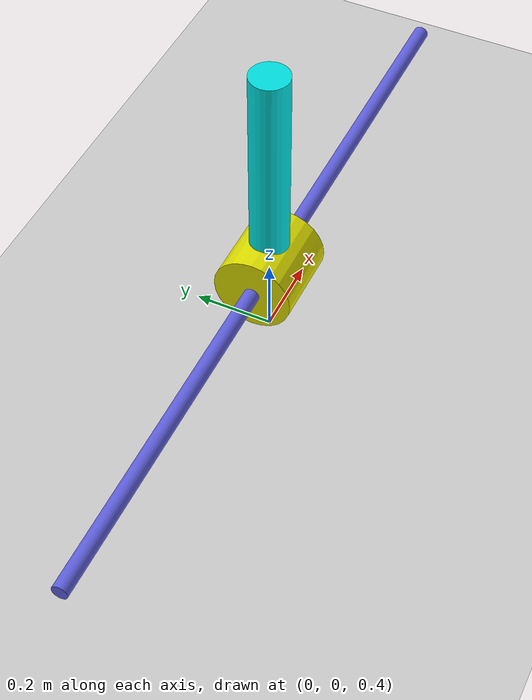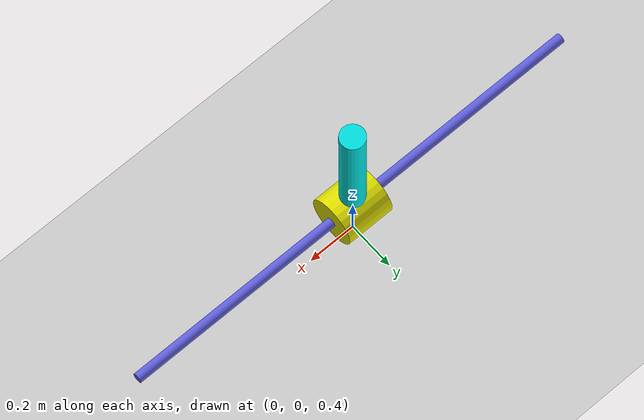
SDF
<?xml version="1.0" ?>
<sdf version="1.8">
  <world name="inverted_pendulum">
    <physics name="10ms" type="ignored">
      <!-- 10 ms physics step; run as fast as CPU allows. Agent loop throttles
           via frame_skip in the sync-gate plugin. -->
      <max_step_size>0.01</max_step_size>
      <real_time_update_rate>0</real_time_update_rate>
    </physics>
    <plugin
      filename="gz-sim-physics-system"
      name="gz::sim::systems::Physics">
    </plugin>
    <plugin
      filename="gz-sim-contact-system"
      name="gz::sim::systems::Contact">
    </plugin>
    <plugin
      filename="gz-sim-sensors-system"
      name="gz::sim::systems::Sensors">
      <render_engine>ogre2</render_engine>
    </plugin>
    <plugin
      filename="gz-sim-scene-broadcaster-system"
      name="gz::sim::systems::SceneBroadcaster">
    </plugin>
    <plugin
      filename="gz-sim-user-commands-system"
      name="gz::sim::systems::UserCommands">
    </plugin>
    <plugin
      filename="gz-sim-python-system-loader-system"
      name="gz::sim::systems::PythonSystemLoader">
      <module_name>inverted_pendulum_learner</module_name>
      <agent_name>inverted_pendulum</agent_name>
      <frame_skip>4</frame_skip>
    </plugin>

    <light name="sun" type="directional">
      <cast_shadows>true</cast_shadows>
      <pose>0 0 10 0 0 0</pose>
      <diffuse>0.8 0.8 0.8 1</diffuse>
      <specular>0.2 0.2 0.2 1</specular>
      <attenuation>
        <range>1000</range>
        <constant>0.9</constant>
        <linear>0.01</linear>
        <quadratic>0.001</quadratic>
      </attenuation>
      <direction>-0.5 0.1 -0.9</direction>
    </light>

    <model name="ground_plane">
      <static>true</static>
      <link name="link">
        <collision name="collision">
          <geometry>
            <plane>
              <normal>0 0 1</normal>
              <size>100 100</size>
            </plane>
          </geometry>
        </collision>
        <visual name="visual">
          <geometry>
            <plane>
              <normal>0 0 1</normal>
              <size>100 100</size>
            </plane>
          </geometry>
          <material>
            <ambient>0.8 0.8 0.8 1</ambient>
            <diffuse>0.8 0.8 0.8 1</diffuse>
            <specular>0.8 0.8 0.8 1</specular>
          </material>
        </visual>
      </link>
    </model>

    <model name="inverted_pendulum">
      <pose>0 0 0.6 0 0 0</pose>
      <include merge="true">
        <uri>package://gazebo_gymnasium_resources/models/inverted_pendulum</uri>
      </include>
    </model>
  </world>
</sdf>

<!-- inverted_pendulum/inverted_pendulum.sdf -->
<sdf version='1.11'>
  <model name='inverted_pendulum'>
    <joint name='world_to_rail' type='fixed'>
      <pose relative_to='__model__'>0 0 0 0 0 0</pose>
      <parent>world</parent>
      <child>rail</child>
    </joint>
    <link name='rail'>
      <pose relative_to='world_to_rail'>0 0 0 0 0 0</pose>
      <inertial>
        <pose>0 0 0 0 0 0</pose>
        <mass>0.0001</mass>
        <inertia>
          <ixx>9.9999999999999995e-07</ixx>
          <ixy>0</ixy>
          <ixz>0</ixz>
          <iyy>9.9999999999999995e-07</iyy>
          <iyz>0</iyz>
          <izz>9.9999999999999995e-07</izz>
        </inertia>
      </inertial>
      <collision name='rail_collision'>
        <pose>0 0 0 0 1.5707963267948966 0</pose>
        <geometry>
          <cylinder>
            <length>2</length>
            <radius>0.02</radius>
          </cylinder>
        </geometry>
      </collision>
      <visual name='rail_visual'>
        <pose>0 0 0 0 1.5707963267948966 0</pose>
        <geometry>
          <cylinder>
            <length>2</length>
            <radius>0.02</radius>
          </cylinder>
        </geometry>
        <material>
          <diffuse>0.37500003 0.37500003 0.875 1</diffuse>
          <ambient>0.37500003 0.37500003 0.875 1</ambient>
        </material>
      </visual>
    </link>
    <joint name='slider' type='prismatic'>
      <pose relative_to='rail'>0 0 0 0 0 0</pose>
      <parent>rail</parent>
      <child>cart</child>
      <axis>
        <xyz>1 0 0</xyz>
        <limit>
          <lower>-1</lower>
          <upper>1</upper>
          <effort>100</effort>
          <velocity>10</velocity>
        </limit>
        <dynamics>
          <damping>1</damping>
          <friction>0</friction>
          <spring_reference>0</spring_reference>
          <spring_stiffness>0</spring_stiffness>
        </dynamics>
      </axis>
    </joint>
    <link name='cart'>
      <pose relative_to='slider'>0 0 0 0 0 0</pose>
      <inertial>
        <pose>0 0 0 0 0 0</pose>
        <mass>10.47198</mass>
        <inertia>
          <ixx>0.069809999999999997</ixx>
          <ixy>0</ixy>
          <ixz>0</ixz>
          <iyy>0.17452999999999999</iyy>
          <iyz>0</iyz>
          <izz>0.17452999999999999</izz>
        </inertia>
      </inertial>
      <collision name='cart_collision'>
        <pose>0 0 0 0 1.5707963267948966 0</pose>
        <geometry>
          <cylinder>
            <length>0.20000000000000001</length>
            <radius>0.10000000000000001</radius>
          </cylinder>
        </geometry>
      </collision>
      <visual name='cart_visual'>
        <pose>0 0 0 0 1.5707963267948966 0</pose>
        <geometry>
          <cylinder>
            <length>0.20000000000000001</length>
            <radius>0.10000000000000001</radius>
          </cylinder>
        </geometry>
        <material>
          <diffuse>0.875 0.875 0 1</diffuse>
          <ambient>0.875 0.875 0 1</ambient>
        </material>
      </visual>
    </link>
    <joint name='hinge' type='revolute'>
      <pose relative_to='cart'>0 0 0 0 0 0</pose>
      <parent>cart</parent>
      <child>pole</child>
      <axis>
        <xyz>0 1 0</xyz>
        <limit>
          <lower>-1.5708</lower>
          <upper>1.5708</upper>
          <effort>100</effort>
          <velocity>10</velocity>
        </limit>
        <dynamics>
          <damping>1</damping>
          <friction>0</friction>
          <spring_reference>0</spring_reference>
          <spring_stiffness>0</spring_stiffness>
        </dynamics>
      </axis>
    </joint>
    <link name='pole'>
      <pose relative_to='hinge'>0 0 0 0 0 0</pose>
      <inertial>
        <pose>0.00050000000000000001 0 0.29999999999999999 0 0 0</pose>
        <mass>5.0185899999999997</mass>
        <inertia>
          <ixx>0.20787</ixx>
          <ixy>0</ixy>
          <ixz>0</ixz>
          <iyy>0.20796000000000001</iyy>
          <iyz>0</iyz>
          <izz>0.0081300000000000001</izz>
        </inertia>
      </inertial>
      <collision name='pole_collision'>
        <pose>0.00050000000000000001 0 0.29999999999999999 0 0 0</pose>
        <geometry>
          <cylinder>
            <length>0.59999999999999998</length>
            <radius>0.049000000000000002</radius>
          </cylinder>
        </geometry>
      </collision>
      <visual name='pole_visual'>
        <pose>0.00050000000000000001 0 0.29999999999999999 0 0 0</pose>
        <geometry>
          <cylinder>
            <length>0.59999999999999998</length>
            <radius>0.049000000000000002</radius>
          </cylinder>
        </geometry>
        <material>
          <diffuse>0 0.875 0.875 1</diffuse>
          <ambient>0 0.875 0.875 1</ambient>
        </material>
      </visual>
    </link>

    <plugin
      filename="gz-sim-apply-joint-force-system"
      name="gz::sim::systems::ApplyJointForce">
      <joint_name>slider</joint_name>
    </plugin>

    <!-- Publish joint positions + velocities for the sync-gate plugin. -->
    <plugin
      filename="gz-sim-joint-state-publisher-system"
      name="gz::sim::systems::JointStatePublisher">
      <joint_name>slider</joint_name>
      <joint_name>hinge</joint_name>
    </plugin>
  </model>
</sdf>
